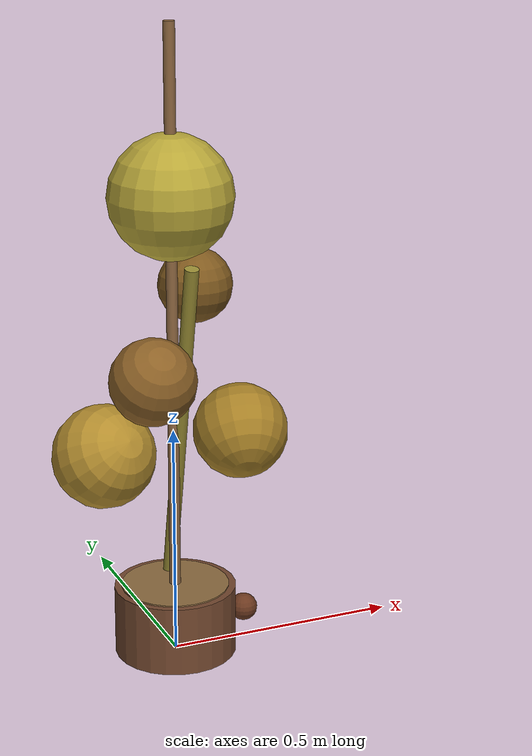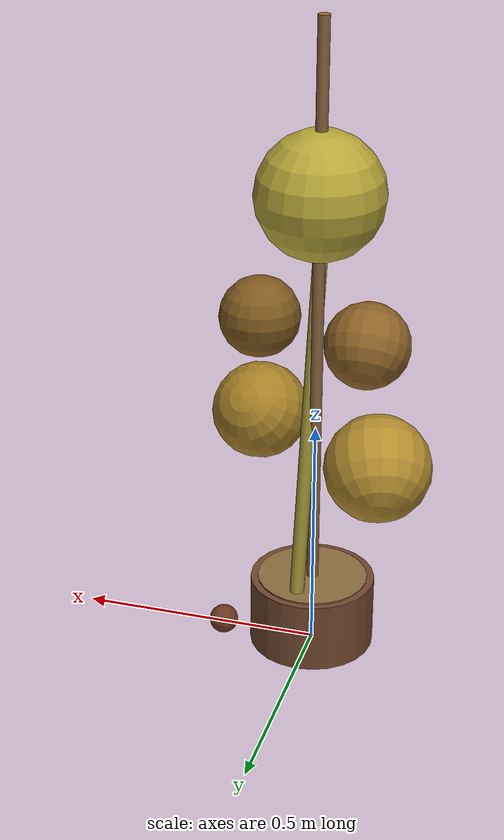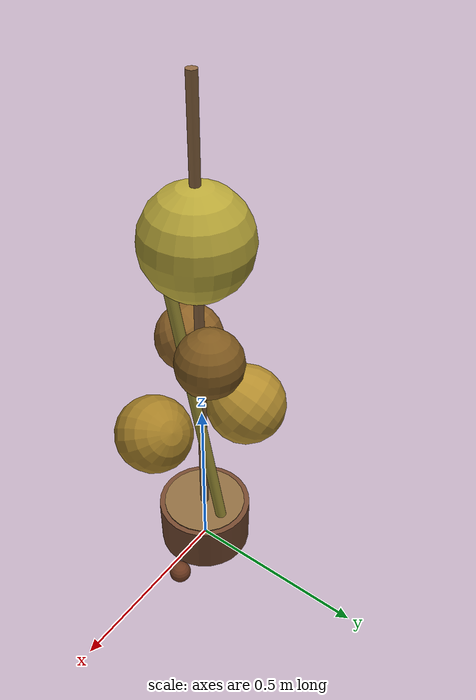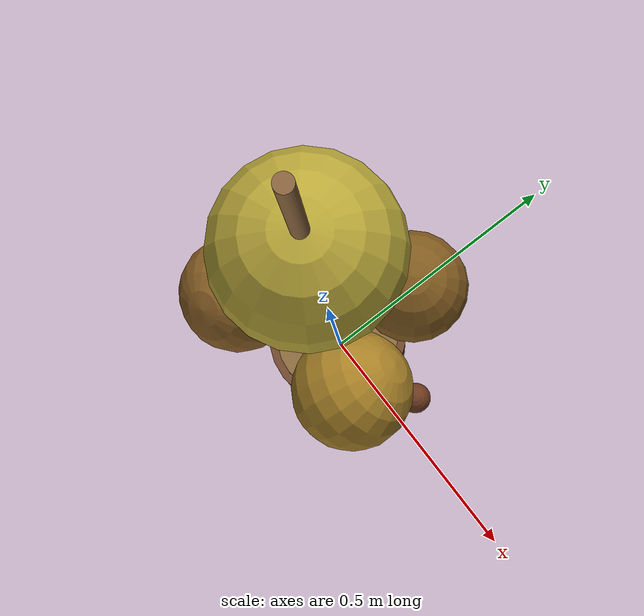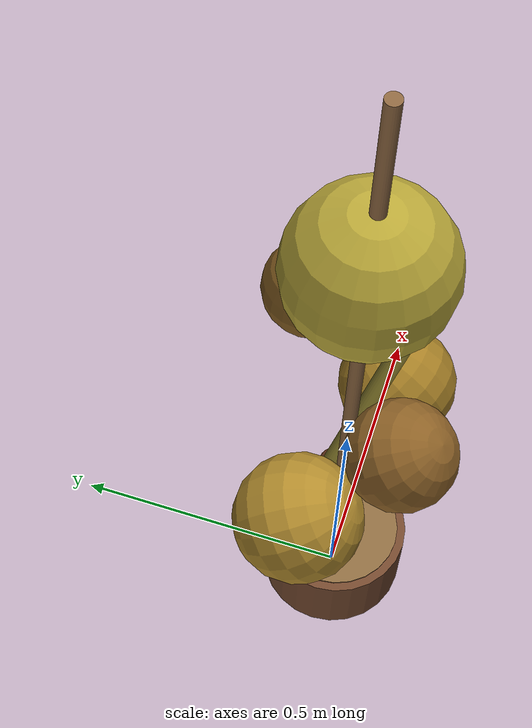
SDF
<?xml version="1.0"?>
<sdf version="1.10">
  <model name="tomato_plant_wilted">
    <static>true</static>

    <!-- Same pot + dry soil top -->
    <link name="pot">
      <pose>0 0 0.075 0 0 0</pose>
      <visual name="v"><geometry><cylinder><radius>0.13</radius><length>0.15</length></cylinder></geometry>
        <material><ambient>0.30 0.20 0.13 1</ambient><diffuse>0.45 0.28 0.18 1</diffuse></material>
      </visual>
      <collision name="c"><geometry><cylinder><radius>0.13</radius><length>0.15</length></cylinder></geometry></collision>
    </link>
    <link name="pot_soil">
      <pose>0 0 0.148 0 0 0</pose>
      <visual name="v"><geometry><cylinder><radius>0.115</radius><length>0.01</length></cylinder></geometry>
        <material><ambient>0.45 0.35 0.20 1</ambient><diffuse>0.55 0.42 0.25 1</diffuse></material>
      </visual>
    </link>

    <!-- Stake -->
    <link name="stake">
      <pose>0 0 0.75 0 0 0</pose>
      <visual name="v"><geometry><cylinder><radius>0.012</radius><length>1.2</length></cylinder></geometry>
        <material><ambient>0.35 0.25 0.15 1</ambient><diffuse>0.55 0.40 0.25 1</diffuse></material>
      </visual>
    </link>

    <!-- Brown/yellowing stem (smaller, broken) -->
    <link name="stem">
      <pose>0.015 0 0.50 0.20 0 0</pose>           <!-- tilted = drooping -->
      <visual name="v"><geometry><cylinder><radius>0.015</radius><length>0.75</length></cylinder></geometry>
        <material><ambient>0.45 0.40 0.15 1</ambient><diffuse>0.60 0.55 0.20 1</diffuse></material>
      </visual>
    </link>

    <!-- Drooping yellow-brown leaves (lower positions, hanging) -->
    <link name="leaf_droop_1">
      <pose>-0.14 0.04 0.45 1.0 0 0.3</pose>
      <visual name="v"><geometry><sphere><radius>0.11</radius></sphere></geometry>
        <material><ambient>0.55 0.42 0.12 1</ambient><diffuse>0.70 0.55 0.18 1</diffuse></material>
      </visual>
    </link>
    <link name="leaf_droop_2">
      <pose>0.13 -0.05 0.50 -0.9 0 -0.2</pose>
      <visual name="v"><geometry><sphere><radius>0.10</radius></sphere></geometry>
        <material><ambient>0.50 0.38 0.10 1</ambient><diffuse>0.65 0.50 0.15 1</diffuse></material>
      </visual>
    </link>
    <link name="leaf_brown_1">
      <pose>-0.08 -0.10 0.65 0.7 0 0</pose>
      <visual name="v"><geometry><sphere><radius>0.09</radius></sphere></geometry>
        <material><ambient>0.42 0.28 0.10 1</ambient><diffuse>0.55 0.38 0.15 1</diffuse></material>     <!-- brown -->
      </visual>
    </link>
    <link name="leaf_brown_2">
      <pose>0.09 0.10 0.78 0 0 0</pose>
      <visual name="v"><geometry><sphere><radius>0.08</radius></sphere></geometry>
        <material><ambient>0.38 0.25 0.08 1</ambient><diffuse>0.50 0.35 0.12 1</diffuse></material>
      </visual>
    </link>
    <link name="leaf_yellow_top">
      <pose>0.00 0.00 1.00 0 0 0</pose>
      <visual name="v"><geometry><sphere><radius>0.13</radius></sphere></geometry>
        <material><ambient>0.55 0.50 0.18 1</ambient><diffuse>0.72 0.65 0.22 1</diffuse></material>
      </visual>
    </link>

    <!-- One shriveled brown leftover fruit on the ground beside the pot -->
    <link name="dropped_fruit">
      <pose>0.18 0.05 0.04 0 0 0</pose>
      <visual name="v"><geometry><sphere><radius>0.030</radius></sphere></geometry>
        <material><ambient>0.30 0.15 0.08 1</ambient><diffuse>0.42 0.22 0.12 1</diffuse></material>
      </visual>
    </link>

    <joint name="j_stake" type="fixed"><parent>pot</parent><child>stake</child></joint>
    <joint name="j_soil"  type="fixed"><parent>pot</parent><child>pot_soil</child></joint>
    <joint name="j_stem"  type="fixed"><parent>stake</parent><child>stem</child></joint>
    <joint name="j_l1"    type="fixed"><parent>stake</parent><child>leaf_droop_1</child></joint>
    <joint name="j_l2"    type="fixed"><parent>stake</parent><child>leaf_droop_2</child></joint>
    <joint name="j_l3"    type="fixed"><parent>stake</parent><child>leaf_brown_1</child></joint>
    <joint name="j_l4"    type="fixed"><parent>stake</parent><child>leaf_brown_2</child></joint>
    <joint name="j_l5"    type="fixed"><parent>stake</parent><child>leaf_yellow_top</child></joint>
    <joint name="j_fr"    type="fixed"><parent>pot</parent><child>dropped_fruit</child></joint>
  </model>
</sdf>
